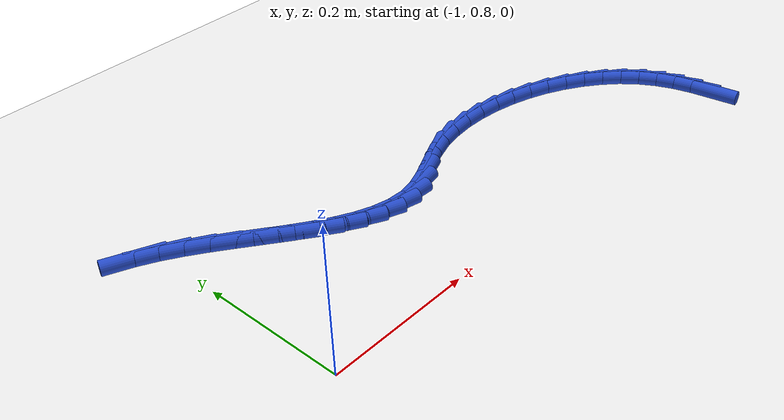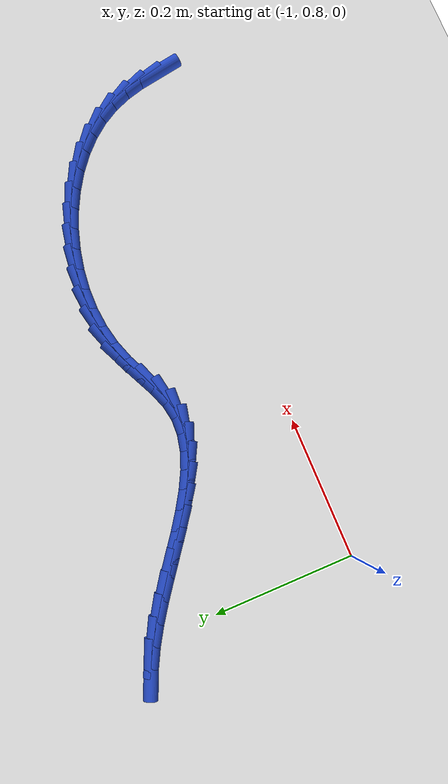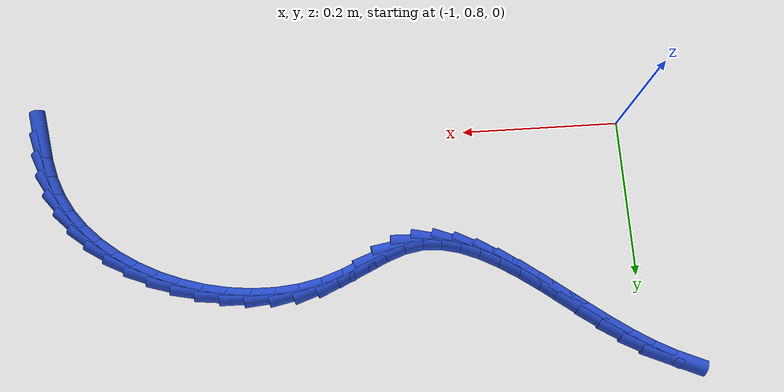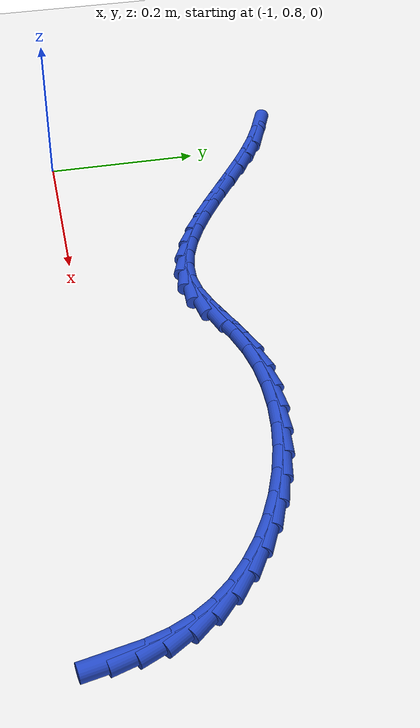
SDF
<sdf version="1.6">
 <world name="default">
  <model name="ground_plane">
   <static>1</static>
   <link name="link">
    <collision name="collision">
     <geometry><plane><normal>0 0 1</normal><size>100 100</size></plane></geometry>
     <surface><friction><ode><mu>100</mu><mu2>50</mu2></ode></friction></surface>
    </collision>
    <visual name="visual">
     <cast_shadows>0</cast_shadows>
     <geometry><plane><normal>0 0 1</normal><size>100 100</size></plane></geometry>
     <material>
      <script><uri>file://media/materials/scripts/gazebo.material</uri><name>Gazebo/WhiteGlow</name></script>
     </material>
    </visual>
   </link>
  </model>
  <model name="line">
   <link name="link_31">
    <pose>-0.25714327271299253 0.7827361335298646 0.01 0 1.57 -1.399265712273153</pose>
    <collision name="collision">
     <geometry><cylinder><radius>0.01</radius><length>0.08</length></cylinder></geometry>
    </collision>
    <visual name="visual">
     <material>
      <script><name>Gazebo/Blue</name><uri>file://media/materials/scripts/gazebo.material</uri></script>
     </material>
     <geometry><cylinder><radius>0.01</radius><length>0.08</length></cylinder></geometry>
    </visual>
   </link>
   <link name="link_32">
    <pose>-0.2617707102371928 0.8094483579543844 0.01 0 1.57 -1.3032048906992089</pose>
    <collision name="collision">
     <geometry><cylinder><radius>0.01</radius><length>0.08</length></cylinder></geometry>
    </collision>
    <visual name="visual">
     <material>
      <script><name>Gazebo/Blue</name><uri>file://media/materials/scripts/gazebo.material</uri></script>
     </material>
     <geometry><cylinder><radius>0.01</radius><length>0.08</length></cylinder></geometry>
    </visual>
   </link>
   <link name="link_33">
    <pose>-0.2688194800577457 0.8351581432322245 0.01 0 1.57 -1.1835648277087818</pose>
    <collision name="collision">
     <geometry><cylinder><radius>0.01</radius><length>0.08</length></cylinder></geometry>
    </collision>
    <visual name="visual">
     <material>
      <script><name>Gazebo/Blue</name><uri>file://media/materials/scripts/gazebo.material</uri></script>
     </material>
     <geometry><cylinder><radius>0.01</radius><length>0.08</length></cylinder></geometry>
    </visual>
   </link>
   <link name="link_34">
    <pose>-0.27880871074848723 0.8596522198113755 0.01 0 1.57 -1.0438807030472712</pose>
    <collision name="collision">
     <geometry><cylinder><radius>0.01</radius><length>0.08</length></cylinder></geometry>
    </collision>
    <visual name="visual">
     <material>
      <script><name>Gazebo/Blue</name><uri>file://media/materials/scripts/gazebo.material</uri></script>
     </material>
     <geometry><cylinder><radius>0.01</radius><length>0.08</length></cylinder></geometry>
    </visual>
   </link>
   <link name="link_35">
    <pose>-0.2922287105430867 0.8827193092780393 0.01 0 1.57 -0.9048821901748001</pose>
    <collision name="collision">
     <geometry><cylinder><radius>0.01</radius><length>0.08</length></cylinder></geometry>
    </collision>
    <visual name="visual">
     <material>
      <script><name>Gazebo/Blue</name><uri>file://media/materials/scripts/gazebo.material</uri></script>
     </material>
     <geometry><cylinder><radius>0.01</radius><length>0.08</length></cylinder></geometry>
    </visual>
   </link>
   <link name="link_36">
    <pose>-0.3090897871484933 0.9041812954706969 0.01 0 1.57 -0.7800937554397911</pose>
    <collision name="collision">
     <geometry><cylinder><radius>0.01</radius><length>0.08</length></cylinder></geometry>
    </collision>
    <visual name="visual">
     <material>
      <script><name>Gazebo/Blue</name><uri>file://media/materials/scripts/gazebo.material</uri></script>
     </material>
     <geometry><cylinder><radius>0.01</radius><length>0.08</length></cylinder></geometry>
    </visual>
   </link>
   <link name="link_37">
    <pose>-0.32900609866637187 0.9238874313918554 0.01 0 1.57 -0.6677132965471272</pose>
    <collision name="collision">
     <geometry><cylinder><radius>0.01</radius><length>0.08</length></cylinder></geometry>
    </collision>
    <visual name="visual">
     <material>
      <script><name>Gazebo/Blue</name><uri>file://media/materials/scripts/gazebo.material</uri></script>
     </material>
     <geometry><cylinder><radius>0.01</radius><length>0.08</length></cylinder></geometry>
    </visual>
   </link>
   <link name="link_38">
    <pose>-0.3515799470677737 0.9416877891597792 0.01 0 1.57 -0.5650477634246551</pose>
    <collision name="collision">
     <geometry><cylinder><radius>0.01</radius><length>0.08</length></cylinder></geometry>
    </collision>
    <visual name="visual">
     <material>
      <script><name>Gazebo/Blue</name><uri>file://media/materials/scripts/gazebo.material</uri></script>
     </material>
     <geometry><cylinder><radius>0.01</radius><length>0.08</length></cylinder></geometry>
    </visual>
   </link>
   <link name="link_39">
    <pose>-0.3764136343237496 0.9574324408927315 0.01 0 1.57 -0.4693580459899538</pose>
    <collision name="collision">
     <geometry><cylinder><radius>0.01</radius><length>0.08</length></cylinder></geometry>
    </collision>
    <visual name="visual">
     <material>
      <script><name>Gazebo/Blue</name><uri>file://media/materials/scripts/gazebo.material</uri></script>
     </material>
     <geometry><cylinder><radius>0.01</radius><length>0.08</length></cylinder></geometry>
    </visual>
   </link>
   <link name="link_40">
    <pose>-0.40310946240535084 0.9709714587089772 0.01 0 1.57 -0.37803493548141825</pose>
    <collision name="collision">
     <geometry><cylinder><radius>0.01</radius><length>0.08</length></cylinder></geometry>
    </collision>
    <visual name="visual">
     <material>
      <script><name>Gazebo/Blue</name><uri>file://media/materials/scripts/gazebo.material</uri></script>
     </material>
     <geometry><cylinder><radius>0.01</radius><length>0.08</length></cylinder></geometry>
    </visual>
   </link>
   <link name="link_41">
    <pose>-0.4312697332836288 0.9821549147267801 0.01 0 1.57 -0.2886249701991375</pose>
    <collision name="collision">
     <geometry><cylinder><radius>0.01</radius><length>0.08</length></cylinder></geometry>
    </collision>
    <visual name="visual">
     <material>
      <script><name>Gazebo/Blue</name><uri>file://media/materials/scripts/gazebo.material</uri></script>
     </material>
     <geometry><cylinder><radius>0.01</radius><length>0.08</length></cylinder></geometry>
    </visual>
   </link>
   <link name="link_42">
    <pose>-0.46049674892963427 0.9908328810644043 0.01 0 1.57 -0.1987889834341735</pose>
    <collision name="collision">
     <geometry><cylinder><radius>0.01</radius><length>0.08</length></cylinder></geometry>
    </collision>
    <visual name="visual">
     <material>
      <script><name>Gazebo/Blue</name><uri>file://media/materials/scripts/gazebo.material</uri></script>
     </material>
     <geometry><cylinder><radius>0.01</radius><length>0.08</length></cylinder></geometry>
    </visual>
   </link>
   <link name="link_43">
    <pose>-0.4903928113144185 0.9968554298401135 0.01 0 1.57 -0.10624343257482734</pose>
    <collision name="collision">
     <geometry><cylinder><radius>0.01</radius><length>0.08</length></cylinder></geometry>
    </collision>
    <visual name="visual">
     <material>
      <script><name>Gazebo/Blue</name><uri>file://media/materials/scripts/gazebo.material</uri></script>
     </material>
     <geometry><cylinder><radius>0.01</radius><length>0.08</length></cylinder></geometry>
    </visual>
   </link>
   <link name="link_44">
    <pose>-0.5205602224090325 1.0000726331721723 0.01 0 1.57 -0.008718845273887716</pose>
    <collision name="collision">
     <geometry><cylinder><radius>0.01</radius><length>0.08</length></cylinder></geometry>
    </collision>
    <visual name="visual">
     <material>
      <script><name>Gazebo/Blue</name><uri>file://media/materials/scripts/gazebo.material</uri></script>
     </material>
     <geometry><cylinder><radius>0.01</radius><length>0.08</length></cylinder></geometry>
    </visual>
   </link>
   <link name="link_45">
    <pose>-0.5506012841845276 1.0003345631788445 0.01 0 1.57 0.09603023360826245</pose>
    <collision name="collision">
     <geometry><cylinder><radius>0.01</radius><length>0.08</length></cylinder></geometry>
    </collision>
    <visual name="visual">
     <material>
      <script><name>Gazebo/Blue</name><uri>file://media/materials/scripts/gazebo.material</uri></script>
     </material>
     <geometry><cylinder><radius>0.01</radius><length>0.08</length></cylinder></geometry>
    </visual>
   </link>
   <link name="link_46">
    <pose>-0.5801182986119544 0.9974912919783941 0.01 0 1.57 0.21011823832212112</pose>
    <collision name="collision">
     <geometry><cylinder><radius>0.01</radius><length>0.08</length></cylinder></geometry>
    </collision>
    <visual name="visual">
     <material>
      <script><name>Gazebo/Blue</name><uri>file://media/materials/scripts/gazebo.material</uri></script>
     </material>
     <geometry><cylinder><radius>0.01</radius><length>0.08</length></cylinder></geometry>
    </visual>
   </link>
   <link name="link_47">
    <pose>-0.6087135676623646 0.9913928916890855 0.01 0 1.57 0.33450263647705586</pose>
    <collision name="collision">
     <geometry><cylinder><radius>0.01</radius><length>0.08</length></cylinder></geometry>
    </collision>
    <visual name="visual">
     <material>
      <script><name>Gazebo/Blue</name><uri>file://media/materials/scripts/gazebo.material</uri></script>
     </material>
     <geometry><cylinder><radius>0.01</radius><length>0.08</length></cylinder></geometry>
    </visual>
   </link>
   <link name="link_48">
    <pose>-0.6359956990288026 0.9819106166274126 0.01 0 1.57 0.43161143432639726</pose>
    <collision name="collision">
     <geometry><cylinder><radius>0.01</radius><length>0.08</length></cylinder></geometry>
    </collision>
    <visual name="visual">
     <material>
      <script><name>Gazebo/Blue</name><uri>file://media/materials/scripts/gazebo.material</uri></script>
     </material>
     <geometry><cylinder><radius>0.01</radius><length>0.08</length></cylinder></geometry>
    </visual>
   </link>
   <link name="link_49">
    <pose>-0.6618912633317708 0.9699838230284478 0.01 0 1.57 0.4453379137519719</pose>
    <collision name="collision">
     <geometry><cylinder><radius>0.01</radius><length>0.08</length></cylinder></geometry>
    </collision>
    <visual name="visual">
     <material>
      <script><name>Gazebo/Blue</name><uri>file://media/materials/scripts/gazebo.material</uri></script>
     </material>
     <geometry><cylinder><radius>0.01</radius><length>0.08</length></cylinder></geometry>
    </visual>
   </link>
   <link name="link_50">
    <pose>-0.6867877747798431 0.9581002700643989 0.01 0 1.57 0.36275585915896386</pose>
    <collision name="collision">
     <geometry><cylinder><radius>0.01</radius><length>0.08</length></cylinder></geometry>
    </collision>
    <visual name="visual">
     <material>
      <script><name>Gazebo/Blue</name><uri>file://media/materials/scripts/gazebo.material</uri></script>
     </material>
     <geometry><cylinder><radius>0.01</radius><length>0.08</length></cylinder></geometry>
    </visual>
   </link>
   <link name="link_51">
    <pose>-0.7111088913319522 0.9488691310906029 0.01 0 1.57 0.17421064434219116</pose>
    <collision name="collision">
     <geometry><cylinder><radius>0.01</radius><length>0.08</length></cylinder></geometry>
    </collision>
    <visual name="visual">
     <material>
      <script><name>Gazebo/Blue</name><uri>file://media/materials/scripts/gazebo.material</uri></script>
     </material>
     <geometry><cylinder><radius>0.01</radius><length>0.08</length></cylinder></geometry>
    </visual>
   </link>
   <link name="link_52">
    <pose>-0.7352447755202031 0.9446213434269082 0.01 0 1.57 -0.041086386822635705</pose>
    <collision name="collision">
     <geometry><cylinder><radius>0.01</radius><length>0.08</length></cylinder></geometry>
    </collision>
    <visual name="visual">
     <material>
      <script><name>Gazebo/Blue</name><uri>file://media/materials/scripts/gazebo.material</uri></script>
     </material>
     <geometry><cylinder><radius>0.01</radius><length>0.08</length></cylinder></geometry>
    </visual>
   </link>
   <link name="link_53">
    <pose>-0.7593356543252002 0.9456117079303081 0.01 0 1.57 -0.22639034225342297</pose>
    <collision name="collision">
     <geometry><cylinder><radius>0.01</radius><length>0.08</length></cylinder></geometry>
    </collision>
    <visual name="visual">
     <material>
      <script><name>Gazebo/Blue</name><uri>file://media/materials/scripts/gazebo.material</uri></script>
     </material>
     <geometry><cylinder><radius>0.01</radius><length>0.08</length></cylinder></geometry>
    </visual>
   </link>
   <link name="link_54">
    <pose>-0.7834087933918054 0.9511566909686812 0.01 0 1.57 -0.37255685304346425</pose>
    <collision name="collision">
     <geometry><cylinder><radius>0.01</radius><length>0.08</length></cylinder></geometry>
    </collision>
    <visual name="visual">
     <material>
      <script><name>Gazebo/Blue</name><uri>file://media/materials/scripts/gazebo.material</uri></script>
     </material>
     <geometry><cylinder><radius>0.01</radius><length>0.08</length></cylinder></geometry>
    </visual>
   </link>
   <link name="link_55">
    <pose>-0.8074909050824676 0.9605681629659346 0.01 0 1.57 -0.4811034382538745</pose>
    <collision name="collision">
     <geometry><cylinder><radius>0.01</radius><length>0.08</length></cylinder></geometry>
    </collision>
    <visual name="visual">
     <material>
      <script><name>Gazebo/Blue</name><uri>file://media/materials/scripts/gazebo.material</uri></script>
     </material>
     <geometry><cylinder><radius>0.01</radius><length>0.08</length></cylinder></geometry>
    </visual>
   </link>
   <link name="link_56">
    <pose>-0.8316087017596355 0.973157994345975 0.01 0 1.57 -0.5576304165380404</pose>
    <collision name="collision">
     <geometry><cylinder><radius>0.01</radius><length>0.08</length></cylinder></geometry>
    </collision>
    <visual name="visual">
     <material>
      <script><name>Gazebo/Blue</name><uri>file://media/materials/scripts/gazebo.material</uri></script>
     </material>
     <geometry><cylinder><radius>0.01</radius><length>0.08</length></cylinder></geometry>
    </visual>
   </link>
   <link name="link_57">
    <pose>-0.8557888957857586 0.9882380555327096 0.01 0 1.57 -0.6077788800887954</pose>
    <collision name="collision">
     <geometry><cylinder><radius>0.01</radius><length>0.08</length></cylinder></geometry>
    </collision>
    <visual name="visual">
     <material>
      <script><name>Gazebo/Blue</name><uri>file://media/materials/scripts/gazebo.material</uri></script>
     </material>
     <geometry><cylinder><radius>0.01</radius><length>0.08</length></cylinder></geometry>
    </visual>
   </link>
   <link name="link_58">
    <pose>-0.8800581995232861 1.0051202169500453 0.01 0 1.57 -0.6357743593091727</pose>
    <collision name="collision">
     <geometry><cylinder><radius>0.01</radius><length>0.08</length></cylinder></geometry>
    </collision>
    <visual name="visual">
     <material>
      <script><name>Gazebo/Blue</name><uri>file://media/materials/scripts/gazebo.material</uri></script>
     </material>
     <geometry><cylinder><radius>0.01</radius><length>0.08</length></cylinder></geometry>
    </visual>
   </link>
   <link name="link_59">
    <pose>-0.9044433253346668 1.023116349021889 0.01 0 1.57 -0.64418512362138</pose>
    <collision name="collision">
     <geometry><cylinder><radius>0.01</radius><length>0.08</length></cylinder></geometry>
    </collision>
    <visual name="visual">
     <material>
      <script><name>Gazebo/Blue</name><uri>file://media/materials/scripts/gazebo.material</uri></script>
     </material>
     <geometry><cylinder><radius>0.01</radius><length>0.08</length></cylinder></geometry>
    </visual>
   </link>
   <link name="link_60">
    <pose>-0.9289709855823498 1.041538322172148 0.01 0 1.57 -0.6340278229280496</pose>
    <collision name="collision">
     <geometry><cylinder><radius>0.01</radius><length>0.08</length></cylinder></geometry>
    </collision>
    <visual name="visual">
     <material>
      <script><name>Gazebo/Blue</name><uri>file://media/materials/scripts/gazebo.material</uri></script>
     </material>
     <geometry><cylinder><radius>0.01</radius><length>0.08</length></cylinder></geometry>
    </visual>
   </link>
   <link name="link_61">
    <pose>-0.9536678926287843 1.0596980068247286 0.01 0 1.57 -0.6048856532522937</pose>
    <collision name="collision">
     <geometry><cylinder><radius>0.01</radius><length>0.08</length></cylinder></geometry>
    </collision>
    <visual name="visual">
     <material>
      <script><name>Gazebo/Blue</name><uri>file://media/materials/scripts/gazebo.material</uri></script>
     </material>
     <geometry><cylinder><radius>0.01</radius><length>0.08</length></cylinder></geometry>
    </visual>
   </link>
   <link name="link_62">
    <pose>-0.9785607588364191 1.0769072734035383 0.01 0 1.57 -0.5549694264853835</pose>
    <collision name="collision">
     <geometry><cylinder><radius>0.01</radius><length>0.08</length></cylinder></geometry>
    </collision>
    <visual name="visual">
     <material>
      <script><name>Gazebo/Blue</name><uri>file://media/materials/scripts/gazebo.material</uri></script>
     </material>
     <geometry><cylinder><radius>0.01</radius><length>0.08</length></cylinder></geometry>
    </visual>
   </link>
   <link name="link_63">
    <pose>-1.0036762965677035 1.0924779923324839 0.01 0 1.57 -0.4829893919452354</pose>
    <collision name="collision">
     <geometry><cylinder><radius>0.01</radius><length>0.08</length></cylinder></geometry>
    </collision>
    <visual name="visual">
     <material>
      <script><name>Gazebo/Blue</name><uri>file://media/materials/scripts/gazebo.material</uri></script>
     </material>
     <geometry><cylinder><radius>0.01</radius><length>0.08</length></cylinder></geometry>
    </visual>
   </link>
   <link name="link_64">
    <pose>-1.0290375413107897 1.1057778450481506 0.01 0 1.57 -0.40804307766473275</pose>
    <collision name="collision">
     <geometry><cylinder><radius>0.01</radius><length>0.08</length></cylinder></geometry>
    </collision>
    <visual name="visual">
     <material>
      <script><name>Gazebo/Blue</name><uri>file://media/materials/scripts/gazebo.material</uri></script>
     </material>
     <geometry><cylinder><radius>0.01</radius><length>0.08</length></cylinder></geometry>
    </visual>
   </link>
  </model>
 </world>
</sdf>
